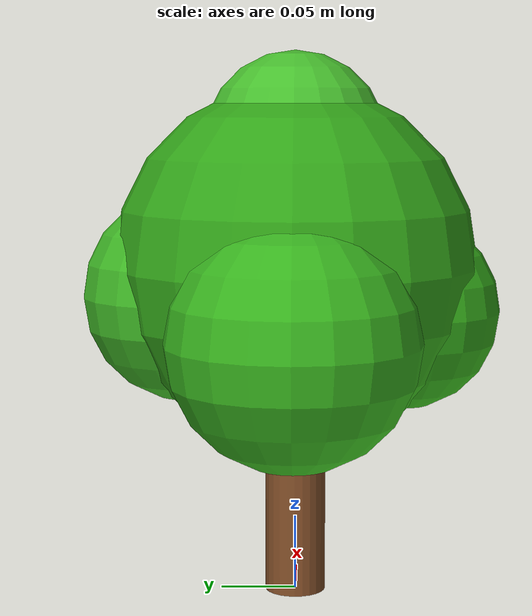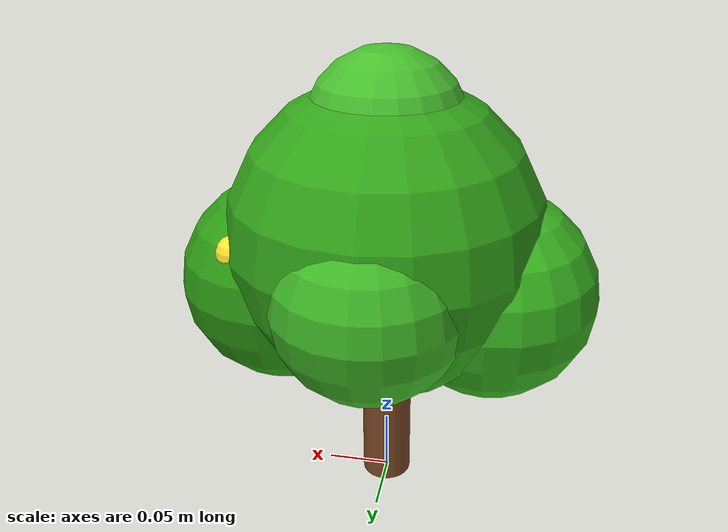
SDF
<?xml version="1.0"?>
<sdf version="1.6">
  <model name="arbusto">
    <static>true</static>

    <link name="base">
      <!-- Tronco central fino -->
      <visual name="tronco">
        <pose>0 0 0.08 0 0 0</pose>
        <geometry>
          <cylinder>
            <radius>0.02</radius>
            <length>0.16</length>
          </cylinder>
        </geometry>
        <material>
          <ambient>0.35 0.2 0.1 1</ambient>
          <diffuse>0.5 0.3 0.15 1</diffuse>
        </material>
      </visual>

      <!-- Copa principal (esfera achatada) -->
      <visual name="copa_principal">
        <pose>0 0 0.22 0 0 0</pose>
        <geometry>
          <sphere>
            <radius>0.12</radius>
          </sphere>
        </geometry>
        <material>
          <ambient>0.1 0.5 0.05 1</ambient>
          <diffuse>0.2 0.65 0.1 1</diffuse>
          <specular>0.05 0.2 0.02 1</specular>
        </material>
      </visual>

      <!-- Copa lateral esquerda -->
      <visual name="copa_esq">
        <pose>-0.08 0 0.18 0 0 0</pose>
        <geometry>
          <sphere>
            <radius>0.08</radius>
          </sphere>
        </geometry>
        <material>
          <ambient>0.12 0.55 0.08 1</ambient>
          <diffuse>0.22 0.7 0.12 1</diffuse>
        </material>
      </visual>

      <!-- Copa lateral direita -->
      <visual name="copa_dir">
        <pose>0.08 0 0.18 0 0 0</pose>
        <geometry>
          <sphere>
            <radius>0.08</radius>
          </sphere>
        </geometry>
        <material>
          <ambient>0.08 0.48 0.04 1</ambient>
          <diffuse>0.18 0.62 0.08 1</diffuse>
        </material>
      </visual>

      <!-- Copa frontal -->
      <visual name="copa_frente">
        <pose>0 0.07 0.20 0 0 0</pose>
        <geometry>
          <sphere>
            <radius>0.07</radius>
          </sphere>
        </geometry>
        <material>
          <ambient>0.15 0.58 0.1 1</ambient>
          <diffuse>0.25 0.72 0.15 1</diffuse>
        </material>
      </visual>

      <!-- Copa traseira -->
      <visual name="copa_tras">
        <pose>0 -0.07 0.19 0 0 0</pose>
        <geometry>
          <sphere>
            <radius>0.065</radius>
          </sphere>
        </geometry>
        <material>
          <ambient>0.1 0.52 0.06 1</ambient>
          <diffuse>0.2 0.66 0.1 1</diffuse>
        </material>
      </visual>

      <!-- Topo -->
      <visual name="copa_topo">
        <pose>0 0 0.30 0 0 0</pose>
        <geometry>
          <sphere>
            <radius>0.06</radius>
          </sphere>
        </geometry>
        <material>
          <ambient>0.18 0.6 0.12 1</ambient>
          <diffuse>0.28 0.75 0.18 1</diffuse>
        </material>
      </visual>

      <!-- Flores/detalhes amarelos -->
      <visual name="flor1">
        <pose>0.1 0.05 0.22 0 0 0</pose>
        <geometry>
          <sphere>
            <radius>0.015</radius>
          </sphere>
        </geometry>
        <material>
          <ambient>0.8 0.7 0.1 1</ambient>
          <diffuse>1.0 0.9 0.2 1</diffuse>
        </material>
      </visual>

      <visual name="flor2">
        <pose>-0.05 0.08 0.20 0 0 0</pose>
        <geometry>
          <sphere>
            <radius>0.012</radius>
          </sphere>
        </geometry>
        <material>
          <ambient>0.8 0.7 0.1 1</ambient>
          <diffuse>1.0 0.9 0.2 1</diffuse>
        </material>
      </visual>

      <visual name="flor3">
        <pose>0.02 -0.1 0.18 0 0 0</pose>
        <geometry>
          <sphere>
            <radius>0.013</radius>
          </sphere>
        </geometry>
        <material>
          <ambient>0.9 0.75 0.15 1</ambient>
          <diffuse>1.0 0.85 0.25 1</diffuse>
        </material>
      </visual>
    </link>
  </model>
</sdf>
